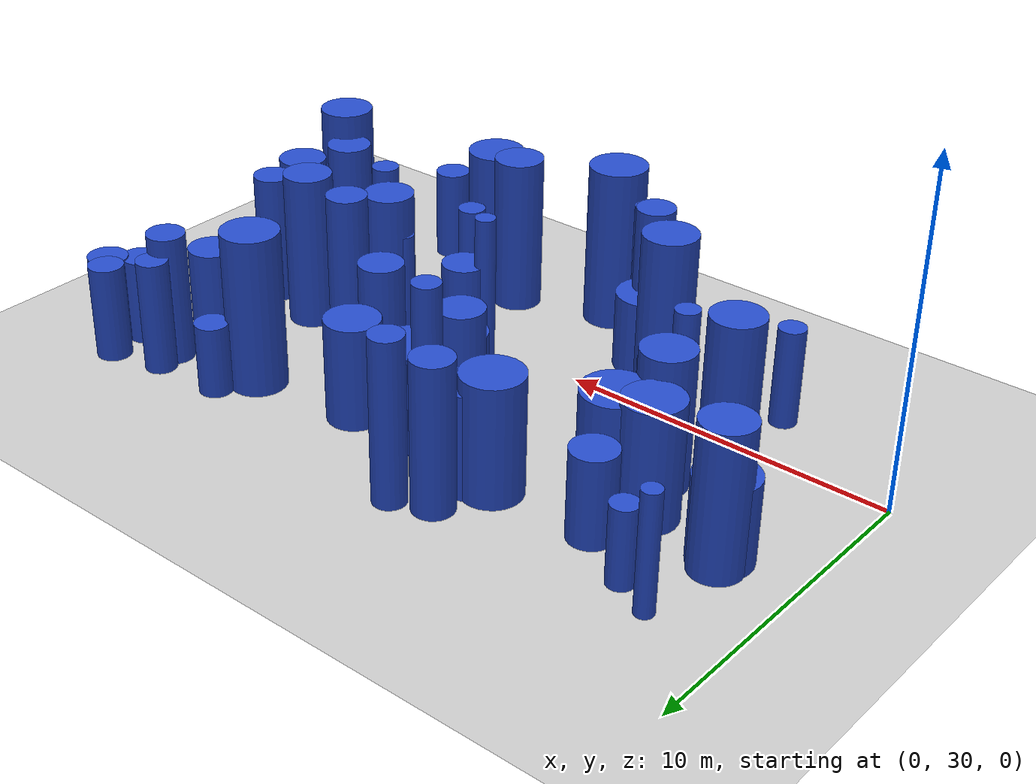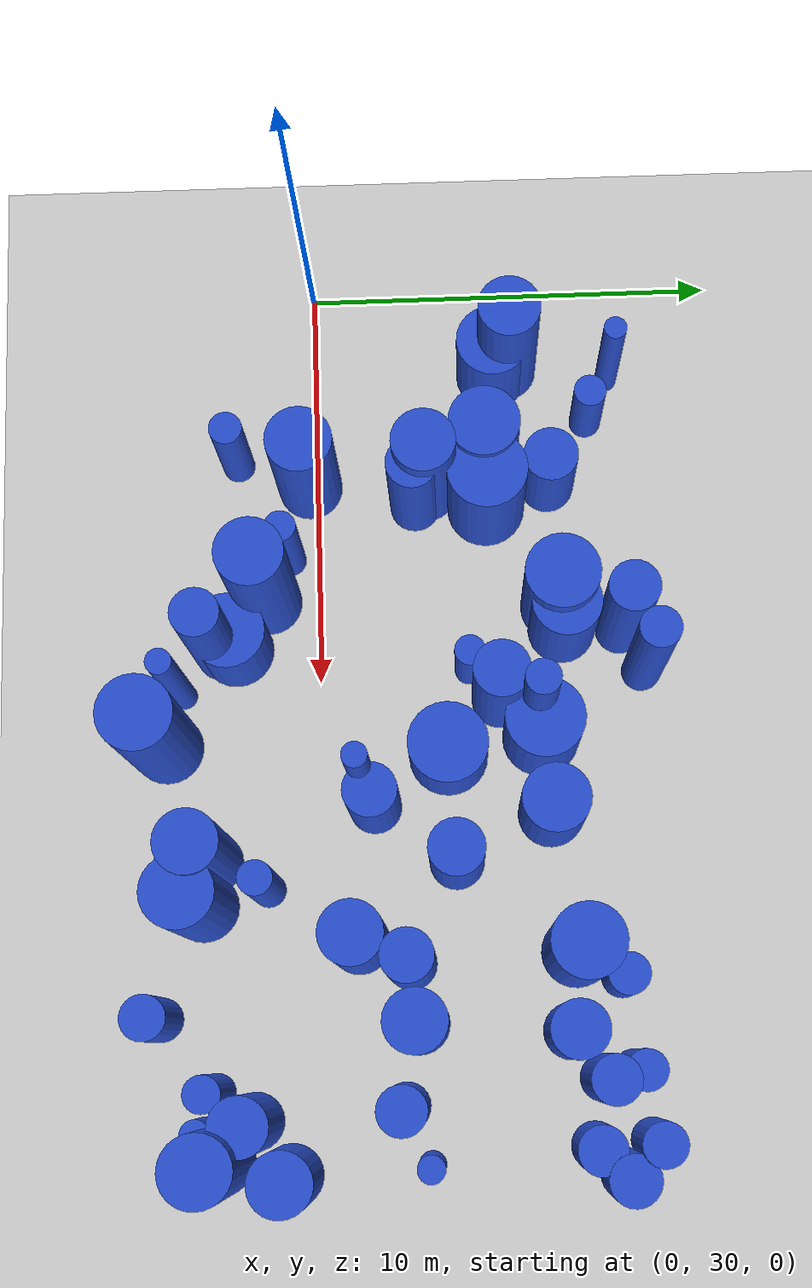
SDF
<sdf version="1.6">
 <world name="default">
  <model name="ground_plane">
   <static>1</static>
   <link name="link">
    <collision name="collision">
     <geometry><plane><normal>0 0 1</normal><size>100 100</size></plane></geometry>
     <surface><friction><ode><mu>100</mu><mu2>50</mu2></ode></friction></surface>
    </collision>
    <visual name="visual">
     <cast_shadows>0</cast_shadows>
     <geometry><plane><normal>0 0 1</normal><size>100 100</size></plane></geometry>
     <material>
      <script><uri>file://media/materials/scripts/gazebo.material</uri><name>Gazebo/Grey</name></script>
     </material>
    </visual>
   </link>
  </model>
  <model name="2">
   <static>0</static>
   <link name="link">
    <inertial>
     <mass>2</mass>
     <inertia><ixx>4.06006</ixx><ixy>0</ixy><ixz>0</ixz><iyy>4.06006</iyy><iyz>0</iyz><izz>0.547674</izz></inertia>
    </inertial>
    <collision name="collision">
     <geometry><cylinder><length>4.76627</length><radius>0.74005</radius></cylinder></geometry>
     <surface><contact><collide_without_contact>1</collide_without_contact></contact></surface>
    </collision>
    <visual name="visual">
     <geometry><cylinder><length>4.76627</length><radius>0.74005</radius></cylinder></geometry>
     <material>
      <script><uri>file://media/materials/scripts/gazebo.material</uri><name>Gazebo/Blue</name></script>
     </material>
    </visual>
    <gravity>0</gravity>
   </link>
   <pose>14.3801 27.3031 2.38314 0 -0 0</pose>
  </model>
  <model name="14">
   <static>0</static>
   <link name="link">
    <inertial>
     <mass>2</mass>
     <inertia><ixx>4.30261</ixx><ixy>0</ixy><ixz>0</ixz><iyy>4.30261</iyy><iyz>0</iyz><izz>0.6461</izz></inertia>
    </inertial>
    <collision name="collision">
     <geometry><cylinder><length>4.88644</length><radius>0.803803</radius></cylinder></geometry>
     <surface><contact><collide_without_contact>1</collide_without_contact></contact></surface>
    </collision>
    <visual name="visual">
     <geometry><cylinder><length>4.88644</length><radius>0.803803</radius></cylinder></geometry>
     <material>
      <script><uri>file://media/materials/scripts/gazebo.material</uri><name>Gazebo/Blue</name></script>
     </material>
    </visual>
    <gravity>0</gravity>
   </link>
   <pose>7.93289 28.7579 2.44322 0 -0 0</pose>
  </model>
  <model name="15">
   <static>0</static>
   <link name="link">
    <inertial>
     <mass>2</mass>
     <inertia><ixx>2.85679</ixx><ixy>0</ixy><ixz>0</ixz><iyy>2.85679</iyy><iyz>0</iyz><izz>0.328589</izz></inertia>
    </inertial>
    <collision name="collision">
     <geometry><cylinder><length>4.01932</length><radius>0.573227</radius></cylinder></geometry>
     <surface><contact><collide_without_contact>1</collide_without_contact></contact></surface>
    </collision>
    <visual name="visual">
     <geometry><cylinder><length>4.01932</length><radius>0.573227</radius></cylinder></geometry>
     <material>
      <script><uri>file://media/materials/scripts/gazebo.material</uri><name>Gazebo/Blue</name></script>
     </material>
    </visual>
    <gravity>0</gravity>
   </link>
   <pose>20.2805 31.834 2.00966 0 -0 0</pose>
  </model>
  <model name="26">
   <static>0</static>
   <link name="link">
    <inertial>
     <mass>2</mass>
     <inertia>
      <ixx>0.763475</ixx>
      <ixy>0</ixy>
      <ixz>0</ixz>
      <iyy>0.763475</iyy>
      <iyz>0</iyz>
      <izz>0.108219</izz>
     </inertia>
    </inertial>
    <collision name="collision">
     <geometry><cylinder><length>2.06305</length><radius>0.328966</radius></cylinder></geometry>
     <surface><contact><collide_without_contact>1</collide_without_contact></contact></surface>
    </collision>
    <visual name="visual">
     <geometry><cylinder><length>2.06305</length><radius>0.328966</radius></cylinder></geometry>
     <material>
      <script><uri>file://media/materials/scripts/gazebo.material</uri><name>Gazebo/Blue</name></script>
     </material>
    </visual>
    <gravity>0</gravity>
   </link>
   <pose>21.6361 32.4049 1.03153 0 -0 0</pose>
  </model>
  <model name="49">
   <static>0</static>
   <link name="link">
    <inertial>
     <mass>2</mass>
     <inertia><ixx>1.58752</ixx><ixy>0</ixy><ixz>0</ixz><iyy>1.58752</iyy><iyz>0</iyz><izz>0.112444</izz></inertia>
    </inertial>
    <collision name="collision">
     <geometry><cylinder><length>3.03114</length><radius>0.335327</radius></cylinder></geometry>
     <surface><contact><collide_without_contact>1</collide_without_contact></contact></surface>
    </collision>
    <visual name="visual">
     <geometry><cylinder><length>3.03114</length><radius>0.335327</radius></cylinder></geometry>
     <material>
      <script><uri>file://media/materials/scripts/gazebo.material</uri><name>Gazebo/Blue</name></script>
     </material>
    </visual>
    <gravity>0</gravity>
   </link>
   <pose>15.9407 30.778 1.51557 0 -0 0</pose>
  </model>
  <model name="52">
   <static>0</static>
   <link name="link">
    <inertial>
     <mass>2</mass>
     <inertia><ixx>4.53354</ixx><ixy>0</ixy><ixz>0</ixz><iyy>4.53354</iyy><iyz>0</iyz><izz>0.761526</izz></inertia>
    </inertial>
    <collision name="collision">
     <geometry><cylinder><length>4.99166</length><radius>0.872654</radius></cylinder></geometry>
     <surface><contact><collide_without_contact>1</collide_without_contact></contact></surface>
    </collision>
    <visual name="visual">
     <geometry><cylinder><length>4.99166</length><radius>0.872654</radius></cylinder></geometry>
     <material>
      <script><uri>file://media/materials/scripts/gazebo.material</uri><name>Gazebo/Blue</name></script>
     </material>
    </visual>
    <gravity>0</gravity>
   </link>
   <pose>11.5308 26.2227 2.49583 0 -0 0</pose>
  </model>
  <model name="75">
   <static>0</static>
   <link name="link">
    <inertial>
     <mass>2</mass>
     <inertia><ixx>1.54398</ixx><ixy>0</ixy><ixz>0</ixz><iyy>1.54398</iyy><iyz>0</iyz><izz>0.272794</izz></inertia>
    </inertial>
    <collision name="collision">
     <geometry><cylinder><length>2.90611</length><radius>0.522297</radius></cylinder></geometry>
     <surface><contact><collide_without_contact>1</collide_without_contact></contact></surface>
    </collision>
    <visual name="visual">
     <geometry><cylinder><length>2.90611</length><radius>0.522297</radius></cylinder></geometry>
     <material>
      <script><uri>file://media/materials/scripts/gazebo.material</uri><name>Gazebo/Blue</name></script>
     </material>
    </visual>
    <gravity>0</gravity>
   </link>
   <pose>21.2322 37.5969 1.45306 0 -0 0</pose>
  </model>
  <model name="76">
   <static>0</static>
   <link name="link">
    <inertial>
     <mass>2</mass>
     <inertia><ixx>3.77454</ixx><ixy>0</ixy><ixz>0</ixz><iyy>3.77454</iyy><iyz>0</iyz><izz>0.6764</izz></inertia>
    </inertial>
    <collision name="collision">
     <geometry><cylinder><length>4.54071</length><radius>0.822435</radius></cylinder></geometry>
     <surface><contact><collide_without_contact>1</collide_without_contact></contact></surface>
    </collision>
    <visual name="visual">
     <geometry><cylinder><length>4.54071</length><radius>0.822435</radius></cylinder></geometry>
     <material>
      <script><uri>file://media/materials/scripts/gazebo.material</uri><name>Gazebo/Blue</name></script>
     </material>
    </visual>
    <gravity>0</gravity>
   </link>
   <pose>21.3706 27.4423 2.27035 0 -0 0</pose>
  </model>
  <model name="93">
   <static>0</static>
   <link name="link">
    <inertial>
     <mass>2</mass>
     <inertia><ixx>3.98973</ixx><ixy>0</ixy><ixz>0</ixz><iyy>3.98973</iyy><iyz>0</iyz><izz>0.325904</izz></inertia>
    </inertial>
    <collision name="collision">
     <geometry><cylinder><length>4.79173</length><radius>0.57088</radius></cylinder></geometry>
     <surface><contact><collide_without_contact>1</collide_without_contact></contact></surface>
    </collision>
    <visual name="visual">
     <geometry><cylinder><length>4.79173</length><radius>0.57088</radius></cylinder></geometry>
     <material>
      <script><uri>file://media/materials/scripts/gazebo.material</uri><name>Gazebo/Blue</name></script>
     </material>
    </visual>
    <gravity>0</gravity>
   </link>
   <pose>9.27206 27.527 2.39586 0 -0 0</pose>
  </model>
  <model name="97">
   <static>0</static>
   <link name="link">
    <inertial>
     <mass>2</mass>
     <inertia><ixx>1.30672</ixx><ixy>0</ixy><ixz>0</ixz><iyy>1.30672</iyy><iyz>0</iyz><izz>0.329685</izz></inertia>
    </inertial>
    <collision name="collision">
     <geometry><cylinder><length>2.61749</length><radius>0.574182</radius></cylinder></geometry>
     <surface><contact><collide_without_contact>1</collide_without_contact></contact></surface>
    </collision>
    <visual name="visual">
     <geometry><cylinder><length>2.61749</length><radius>0.574182</radius></cylinder></geometry>
     <material>
      <script><uri>file://media/materials/scripts/gazebo.material</uri><name>Gazebo/Blue</name></script>
     </material>
    </visual>
    <gravity>0</gravity>
   </link>
   <pose>21.3281 36.24 1.30875 0 -0 0</pose>
  </model>
  <model name="110">
   <static>0</static>
   <link name="link">
    <inertial>
     <mass>2</mass>
     <inertia><ixx>2.35146</ixx><ixy>0</ixy><ixz>0</ixz><iyy>2.35146</iyy><iyz>0</iyz><izz>0.929978</izz></inertia>
    </inertial>
    <collision name="collision">
     <geometry><cylinder><length>3.36435</length><radius>0.964354</radius></cylinder></geometry>
     <surface><contact><collide_without_contact>1</collide_without_contact></contact></surface>
    </collision>
    <visual name="visual">
     <geometry><cylinder><length>3.36435</length><radius>0.964354</radius></cylinder></geometry>
     <material>
      <script><uri>file://media/materials/scripts/gazebo.material</uri><name>Gazebo/Blue</name></script>
     </material>
    </visual>
    <gravity>0</gravity>
   </link>
   <pose>5.66572 34.2087 1.68218 0 -0 0</pose>
  </model>
  <model name="111">
   <static>0</static>
   <link name="link">
    <inertial>
     <mass>2</mass>
     <inertia><ixx>3.46333</ixx><ixy>0</ixy><ixz>0</ixz><iyy>3.46333</iyy><iyz>0</iyz><izz>0.374993</izz></inertia>
    </inertial>
    <collision name="collision">
     <geometry><cylinder><length>4.43339</length><radius>0.612366</radius></cylinder></geometry>
     <surface><contact><collide_without_contact>1</collide_without_contact></contact></surface>
    </collision>
    <visual name="visual">
     <geometry><cylinder><length>4.43339</length><radius>0.612366</radius></cylinder></geometry>
     <material>
      <script><uri>file://media/materials/scripts/gazebo.material</uri><name>Gazebo/Blue</name></script>
     </material>
    </visual>
    <gravity>0</gravity>
   </link>
   <pose>16.9683 32.0406 2.2167 0 -0 0</pose>
  </model>
  <model name="116">
   <static>0</static>
   <link name="link">
    <inertial>
     <mass>2</mass>
     <inertia><ixx>4.11078</ixx><ixy>0</ixy><ixz>0</ixz><iyy>4.11078</iyy><iyz>0</iyz><izz>0.172543</izz></inertia>
    </inertial>
    <collision name="collision">
     <geometry><cylinder><length>4.91397</length><radius>0.415383</radius></cylinder></geometry>
     <surface><contact><collide_without_contact>1</collide_without_contact></contact></surface>
    </collision>
    <visual name="visual">
     <geometry><cylinder><length>4.91397</length><radius>0.415383</radius></cylinder></geometry>
     <material>
      <script><uri>file://media/materials/scripts/gazebo.material</uri><name>Gazebo/Blue</name></script>
     </material>
    </visual>
    <gravity>0</gravity>
   </link>
   <pose>11.0166 35.2485 2.45698 0 -0 0</pose>
  </model>
  <model name="119">
   <static>0</static>
   <link name="link">
    <inertial>
     <mass>2</mass>
     <inertia><ixx>2.4098</ixx><ixy>0</ixy><ixz>0</ixz><iyy>2.4098</iyy><iyz>0</iyz><izz>0.459918</izz></inertia>
    </inertial>
    <collision name="collision">
     <geometry><cylinder><length>3.61649</length><radius>0.678173</radius></cylinder></geometry>
     <surface><contact><collide_without_contact>1</collide_without_contact></contact></surface>
    </collision>
    <visual name="visual">
     <geometry><cylinder><length>3.61649</length><radius>0.678173</radius></cylinder></geometry>
     <material>
      <script><uri>file://media/materials/scripts/gazebo.material</uri><name>Gazebo/Blue</name></script>
     </material>
    </visual>
    <gravity>0</gravity>
   </link>
   <pose>18.6615 35.7969 1.80825 0 -0 0</pose>
  </model>
  <model name="131">
   <static>0</static>
   <link name="link">
    <inertial>
     <mass>2</mass>
     <inertia><ixx>1.52899</ixx><ixy>0</ixy><ixz>0</ixz><iyy>1.52899</iyy><iyz>0</iyz><izz>0.188706</izz></inertia>
    </inertial>
    <collision name="collision">
     <geometry><cylinder><length>2.9339</length><radius>0.434403</radius></cylinder></geometry>
     <surface><contact><collide_without_contact>1</collide_without_contact></contact></surface>
    </collision>
    <visual name="visual">
     <geometry><cylinder><length>2.9339</length><radius>0.434403</radius></cylinder></geometry>
     <material>
      <script><uri>file://media/materials/scripts/gazebo.material</uri><name>Gazebo/Blue</name></script>
     </material>
    </visual>
    <gravity>0</gravity>
   </link>
   <pose>19.8014 27.3711 1.46695 0 -0 0</pose>
  </model>
  <model name="135">
   <static>0</static>
   <link name="link">
    <inertial>
     <mass>2</mass>
     <inertia><ixx>2.03363</ixx><ixy>0</ixy><ixz>0</ixz><iyy>2.03363</iyy><iyz>0</iyz><izz>0.561482</izz></inertia>
    </inertial>
    <collision name="collision">
     <geometry><cylinder><length>3.24305</length><radius>0.749321</radius></cylinder></geometry>
     <surface><contact><collide_without_contact>1</collide_without_contact></contact></surface>
    </collision>
    <visual name="visual">
     <geometry><cylinder><length>3.24305</length><radius>0.749321</radius></cylinder></geometry>
     <material>
      <script><uri>file://media/materials/scripts/gazebo.material</uri><name>Gazebo/Blue</name></script>
     </material>
    </visual>
    <gravity>0</gravity>
   </link>
   <pose>21.7817 29.1035 1.62152 0 -0 0</pose>
  </model>
  <model name="153">
   <static>0</static>
   <link name="link">
    <inertial>
     <mass>2</mass>
     <inertia><ixx>3.0701</ixx><ixy>0</ixy><ixz>0</ixz><iyy>3.0701</iyy><iyz>0</iyz><izz>0.587004</izz></inertia>
    </inertial>
    <collision name="collision">
     <geometry><cylinder><length>4.08162</length><radius>0.766162</radius></cylinder></geometry>
     <surface><contact><collide_without_contact>1</collide_without_contact></contact></surface>
    </collision>
    <visual name="visual">
     <geometry><cylinder><length>4.08162</length><radius>0.766162</radius></cylinder></geometry>
     <material>
      <script><uri>file://media/materials/scripts/gazebo.material</uri><name>Gazebo/Blue</name></script>
     </material>
    </visual>
    <gravity>0</gravity>
   </link>
   <pose>5.17678 32.7306 2.04081 0 -0 0</pose>
  </model>
  <model name="157">
   <static>0</static>
   <link name="link">
    <inertial>
     <mass>2</mass>
     <inertia><ixx>1.36858</ixx><ixy>0</ixy><ixz>0</ixz><iyy>1.36858</iyy><iyz>0</iyz><izz>0.433182</izz></inertia>
    </inertial>
    <collision name="collision">
     <geometry><cylinder><length>2.62905</length><radius>0.658166</radius></cylinder></geometry>
     <surface><contact><collide_without_contact>1</collide_without_contact></contact></surface>
    </collision>
    <visual name="visual">
     <geometry><cylinder><length>2.62905</length><radius>0.658166</radius></cylinder></geometry>
     <material>
      <script><uri>file://media/materials/scripts/gazebo.material</uri><name>Gazebo/Blue</name></script>
     </material>
    </visual>
    <gravity>0</gravity>
   </link>
   <pose>5.13829 35.7656 1.31453 0 -0 0</pose>
  </model>
  <model name="161">
   <static>0</static>
   <link name="link">
    <inertial>
     <mass>2</mass>
     <inertia><ixx>2.38004</ixx><ixy>0</ixy><ixz>0</ixz><iyy>2.38004</iyy><iyz>0</iyz><izz>0.388461</izz></inertia>
    </inertial>
    <collision name="collision">
     <geometry><cylinder><length>3.62144</length><radius>0.623266</radius></cylinder></geometry>
     <surface><contact><collide_without_contact>1</collide_without_contact></contact></surface>
    </collision>
    <visual name="visual">
     <geometry><cylinder><length>3.62144</length><radius>0.623266</radius></cylinder></geometry>
     <material>
      <script><uri>file://media/materials/scripts/gazebo.material</uri><name>Gazebo/Blue</name></script>
     </material>
    </visual>
    <gravity>0</gravity>
   </link>
   <pose>5.56471 32.4436 1.81072 0 -0 0</pose>
  </model>
  <model name="168">
   <static>0</static>
   <link name="link">
    <inertial>
     <mass>2</mass>
     <inertia><ixx>2.46395</ixx><ixy>0</ixy><ixz>0</ixz><iyy>2.46395</iyy><iyz>0</iyz><izz>0.736502</izz></inertia>
    </inertial>
    <collision name="collision">
     <geometry><cylinder><length>3.54601</length><radius>0.858197</radius></cylinder></geometry>
     <surface><contact><collide_without_contact>1</collide_without_contact></contact></surface>
    </collision>
    <visual name="visual">
     <geometry><cylinder><length>3.54601</length><radius>0.858197</radius></cylinder></geometry>
     <material>
      <script><uri>file://media/materials/scripts/gazebo.material</uri><name>Gazebo/Blue</name></script>
     </material>
    </visual>
    <gravity>0</gravity>
   </link>
   <pose>4.56759 34.1751 1.773 0 -0 0</pose>
  </model>
  <model name="171">
   <static>0</static>
   <link name="link">
    <inertial>
     <mass>2</mass>
     <inertia>
      <ixx>0.948382</ixx>
      <ixy>0</ixy>
      <ixz>0</ixz>
      <iyy>0.948382</iyy>
      <iyz>0</iyz>
      <izz>0.135504</izz>
     </inertia>
    </inertial>
    <collision name="collision">
     <geometry><cylinder><length>2.29865</length><radius>0.368109</radius></cylinder></geometry>
     <surface><contact><collide_without_contact>1</collide_without_contact></contact></surface>
    </collision>
    <visual name="visual">
     <geometry><cylinder><length>2.29865</length><radius>0.368109</radius></cylinder></geometry>
     <material>
      <script><uri>file://media/materials/scripts/gazebo.material</uri><name>Gazebo/Blue</name></script>
     </material>
    </visual>
    <gravity>0</gravity>
   </link>
   <pose>9.78927 33.6676 1.14932 0 -0 0</pose>
  </model>
  <model name="188">
   <static>0</static>
   <link name="link">
    <inertial>
     <mass>2</mass>
     <inertia><ixx>4.14335</ixx><ixy>0</ixy><ixz>0</ixz><iyy>4.14335</iyy><iyz>0</iyz><izz>0.235126</izz></inertia>
    </inertial>
    <collision name="collision">
     <geometry><cylinder><length>4.91474</length><radius>0.484898</radius></cylinder></geometry>
     <surface><contact><collide_without_contact>1</collide_without_contact></contact></surface>
    </collision>
    <visual name="visual">
     <geometry><cylinder><length>4.91474</length><radius>0.484898</radius></cylinder></geometry>
     <material>
      <script><uri>file://media/materials/scripts/gazebo.material</uri><name>Gazebo/Blue</name></script>
     </material>
    </visual>
    <gravity>0</gravity>
   </link>
   <pose>9.9782 37.8937 2.45737 0 -0 0</pose>
  </model>
  <model name="201">
   <static>0</static>
   <link name="link">
    <inertial>
     <mass>2</mass>
     <inertia><ixx>1.91528</ixx><ixy>0</ixy><ixz>0</ixz><iyy>1.91528</iyy><iyz>0</iyz><izz>0.890445</izz></inertia>
    </inertial>
    <collision name="collision">
     <geometry><cylinder><length>2.9699</length><radius>0.943634</radius></cylinder></geometry>
     <surface><contact><collide_without_contact>1</collide_without_contact></contact></surface>
    </collision>
    <visual name="visual">
     <geometry><cylinder><length>2.9699</length><radius>0.943634</radius></cylinder></geometry>
     <material>
      <script><uri>file://media/materials/scripts/gazebo.material</uri><name>Gazebo/Blue</name></script>
     </material>
    </visual>
    <gravity>0</gravity>
   </link>
   <pose>11.5583 35.3519 1.48495 0 -0 0</pose>
  </model>
  <model name="203">
   <static>0</static>
   <link name="link">
    <inertial>
     <mass>2</mass>
     <inertia><ixx>2.79883</ixx><ixy>0</ixy><ixz>0</ixz><iyy>2.79883</iyy><iyz>0</iyz><izz>0.322684</izz></inertia>
    </inertial>
    <collision name="collision">
     <geometry><cylinder><length>3.97806</length><radius>0.568053</radius></cylinder></geometry>
     <surface><contact><collide_without_contact>1</collide_without_contact></contact></surface>
    </collision>
    <visual name="visual">
     <geometry><cylinder><length>3.97806</length><radius>0.568053</radius></cylinder></geometry>
     <material>
      <script><uri>file://media/materials/scripts/gazebo.material</uri><name>Gazebo/Blue</name></script>
     </material>
    </visual>
    <gravity>0</gravity>
   </link>
   <pose>19.7723 36.5093 1.98903 0 -0 0</pose>
  </model>
  <model name="209">
   <static>0</static>
   <link name="link">
    <inertial>
     <mass>2</mass>
     <inertia>
      <ixx>2.11249</ixx>
      <ixy>0</ixy>
      <ixz>0</ixz>
      <iyy>2.11249</iyy>
      <iyz>0</iyz>
      <izz>0.0757482</izz>
     </inertia>
    </inertial>
    <collision name="collision">
     <geometry><cylinder><length>3.52813</length><radius>0.275224</radius></cylinder></geometry>
     <surface><contact><collide_without_contact>1</collide_without_contact></contact></surface>
    </collision>
    <visual name="visual">
     <geometry><cylinder><length>3.52813</length><radius>0.275224</radius></cylinder></geometry>
     <material>
      <script><uri>file://media/materials/scripts/gazebo.material</uri><name>Gazebo/Blue</name></script>
     </material>
    </visual>
    <gravity>0</gravity>
   </link>
   <pose>2.36819 37.3679 1.76406 0 -0 0</pose>
  </model>
  <model name="215">
   <static>0</static>
   <link name="link">
    <inertial>
     <mass>2</mass>
     <inertia><ixx>3.34473</ixx><ixy>0</ixy><ixz>0</ixz><iyy>3.34473</iyy><iyz>0</iyz><izz>0.555243</izz></inertia>
    </inertial>
    <collision name="collision">
     <geometry><cylinder><length>4.28983</length><radius>0.745147</radius></cylinder></geometry>
     <surface><contact><collide_without_contact>1</collide_without_contact></contact></surface>
    </collision>
    <visual name="visual">
     <geometry><cylinder><length>4.28983</length><radius>0.745147</radius></cylinder></geometry>
     <material>
      <script><uri>file://media/materials/scripts/gazebo.material</uri><name>Gazebo/Blue</name></script>
     </material>
    </visual>
    <gravity>0</gravity>
   </link>
   <pose>2.04847 34.8468 2.14491 0 -0 0</pose>
  </model>
  <model name="217">
   <static>0</static>
   <link name="link">
    <inertial>
     <mass>2</mass>
     <inertia>
      <ixx>0.908112</ixx>
      <ixy>0</ixy>
      <ixz>0</ixz>
      <iyy>0.908112</iyy>
      <iyz>0</iyz>
      <izz>0.248253</izz>
     </inertia>
    </inertial>
    <collision name="collision">
     <geometry><cylinder><length>2.16885</length><radius>0.49825</radius></cylinder></geometry>
     <surface><contact><collide_without_contact>1</collide_without_contact></contact></surface>
    </collision>
    <visual name="visual">
     <geometry><cylinder><length>2.16885</length><radius>0.49825</radius></cylinder></geometry>
     <material>
      <script><uri>file://media/materials/scripts/gazebo.material</uri><name>Gazebo/Blue</name></script>
     </material>
    </visual>
    <gravity>0</gravity>
   </link>
   <pose>17.4313 37.0569 1.08443 0 -0 0</pose>
  </model>
  <model name="226">
   <static>0</static>
   <link name="link">
    <inertial>
     <mass>2</mass>
     <inertia><ixx>2.63112</ixx><ixy>0</ixy><ixz>0</ixz><iyy>2.63112</iyy><iyz>0</iyz><izz>0.472268</izz></inertia>
    </inertial>
    <collision name="collision">
     <geometry><cylinder><length>3.79077</length><radius>0.687218</radius></cylinder></geometry>
     <surface><contact><collide_without_contact>1</collide_without_contact></contact></surface>
    </collision>
    <visual name="visual">
     <geometry><cylinder><length>3.79077</length><radius>0.687218</radius></cylinder></geometry>
     <material>
      <script><uri>file://media/materials/scripts/gazebo.material</uri><name>Gazebo/Blue</name></script>
     </material>
    </visual>
    <gravity>0</gravity>
   </link>
   <pose>20.5146 28.2637 1.89539 0 -0 0</pose>
  </model>
  <model name="247">
   <static>0</static>
   <link name="link">
    <inertial>
     <mass>2</mass>
     <inertia><ixx>2.09768</ixx><ixy>0</ixy><ixz>0</ixz><iyy>2.09768</iyy><iyz>0</iyz><izz>0.222327</izz></inertia>
    </inertial>
    <collision name="collision">
     <geometry><cylinder><length>3.4524</length><radius>0.471516</radius></cylinder></geometry>
     <surface><contact><collide_without_contact>1</collide_without_contact></contact></surface>
    </collision>
    <visual name="visual">
     <geometry><cylinder><length>3.4524</length><radius>0.471516</radius></cylinder></geometry>
     <material>
      <script><uri>file://media/materials/scripts/gazebo.material</uri><name>Gazebo/Blue</name></script>
     </material>
    </visual>
    <gravity>0</gravity>
   </link>
   <pose>19.593 37.2306 1.7262 0 -0 0</pose>
  </model>
  <model name="270">
   <static>0</static>
   <link name="link">
    <inertial>
     <mass>2</mass>
     <inertia><ixx>2.85217</ixx><ixy>0</ixy><ixz>0</ixz><iyy>2.85217</iyy><iyz>0</iyz><izz>0.449757</izz></inertia>
    </inertial>
    <collision name="collision">
     <geometry><cylinder><length>3.97036</length><radius>0.670639</radius></cylinder></geometry>
     <surface><contact><collide_without_contact>1</collide_without_contact></contact></surface>
    </collision>
    <visual name="visual">
     <geometry><cylinder><length>3.97036</length><radius>0.670639</radius></cylinder></geometry>
     <material>
      <script><uri>file://media/materials/scripts/gazebo.material</uri><name>Gazebo/Blue</name></script>
     </material>
    </visual>
    <gravity>0</gravity>
   </link>
   <pose>10.5963 34.3656 1.98518 0 -0 0</pose>
  </model>
  <model name="282">
   <static>0</static>
   <link name="link">
    <inertial>
     <mass>2</mass>
     <inertia><ixx>1.36812</ixx><ixy>0</ixy><ixz>0</ixz><iyy>1.36812</iyy><iyz>0</iyz><izz>0.361367</izz></inertia>
    </inertial>
    <collision name="collision">
     <geometry><cylinder><length>2.66919</length><radius>0.601138</radius></cylinder></geometry>
     <surface><contact><collide_without_contact>1</collide_without_contact></contact></surface>
    </collision>
    <visual name="visual">
     <geometry><cylinder><length>2.66919</length><radius>0.601138</radius></cylinder></geometry>
     <material>
      <script><uri>file://media/materials/scripts/gazebo.material</uri><name>Gazebo/Blue</name></script>
     </material>
    </visual>
    <gravity>0</gravity>
   </link>
   <pose>21.9939 36.9241 1.3346 0 -0 0</pose>
  </model>
  <model name="284">
   <static>0</static>
   <link name="link">
    <inertial>
     <mass>2</mass>
     <inertia>
      <ixx>3.03926</ixx>
      <ixy>0</ixy>
      <ixz>0</ixz>
      <iyy>3.03926</iyy>
      <iyz>0</iyz>
      <izz>0.0947474</izz>
     </inertia>
    </inertial>
    <collision name="collision">
     <geometry><cylinder><length>4.2369</length><radius>0.307811</radius></cylinder></geometry>
     <surface><contact><collide_without_contact>1</collide_without_contact></contact></surface>
    </collision>
    <visual name="visual">
     <geometry><cylinder><length>4.2369</length><radius>0.307811</radius></cylinder></geometry>
     <material>
      <script><uri>file://media/materials/scripts/gazebo.material</uri><name>Gazebo/Blue</name></script>
     </material>
    </visual>
    <gravity>0</gravity>
   </link>
   <pose>10.2465 26.6381 2.11845 0 -0 0</pose>
  </model>
  <model name="292">
   <static>0</static>
   <link name="link">
    <inertial>
     <mass>2</mass>
     <inertia><ixx>2.26628</ixx><ixy>0</ixy><ixz>0</ixz><iyy>2.26628</iyy><iyz>0</iyz><izz>0.443191</izz></inertia>
    </inertial>
    <collision name="collision">
     <geometry><cylinder><length>3.50259</length><radius>0.665726</radius></cylinder></geometry>
     <surface><contact><collide_without_contact>1</collide_without_contact></contact></surface>
    </collision>
    <visual name="visual">
     <geometry><cylinder><length>3.50259</length><radius>0.665726</radius></cylinder></geometry>
     <material>
      <script><uri>file://media/materials/scripts/gazebo.material</uri><name>Gazebo/Blue</name></script>
     </material>
    </visual>
    <gravity>0</gravity>
   </link>
   <pose>14.551 33.2052 1.75129 0 -0 0</pose>
  </model>
  <model name="312">
   <static>0</static>
   <link name="link">
    <inertial>
     <mass>2</mass>
     <inertia><ixx>1.73389</ixx><ixy>0</ixy><ixz>0</ixz><iyy>1.73389</iyy><iyz>0</iyz><izz>0.140642</izz></inertia>
    </inertial>
    <collision name="collision">
     <geometry><cylinder><length>3.15934</length><radius>0.375022</radius></cylinder></geometry>
     <surface><contact><collide_without_contact>1</collide_without_contact></contact></surface>
    </collision>
    <visual name="visual">
     <geometry><cylinder><length>3.15934</length><radius>0.375022</radius></cylinder></geometry>
     <material>
      <script><uri>file://media/materials/scripts/gazebo.material</uri><name>Gazebo/Blue</name></script>
     </material>
    </visual>
    <gravity>0</gravity>
   </link>
   <pose>6.86889 29.3098 1.57967 0 -0 0</pose>
  </model>
  <model name="315">
   <static>0</static>
   <link name="link">
    <inertial>
     <mass>2</mass>
     <inertia><ixx>1.31121</ixx><ixy>0</ixy><ixz>0</ixz><iyy>1.31121</iyy><iyz>0</iyz><izz>0.819519</izz></inertia>
    </inertial>
    <collision name="collision">
     <geometry><cylinder><length>2.32566</length><radius>0.905273</radius></cylinder></geometry>
     <surface><contact><collide_without_contact>1</collide_without_contact></contact></surface>
    </collision>
    <visual name="visual">
     <geometry><cylinder><length>2.32566</length><radius>0.905273</radius></cylinder></geometry>
     <material>
      <script><uri>file://media/materials/scripts/gazebo.material</uri><name>Gazebo/Blue</name></script>
     </material>
    </visual>
    <gravity>0</gravity>
   </link>
   <pose>9.12732 27.9421 1.16283 0 -0 0</pose>
  </model>
  <model name="347">
   <static>0</static>
   <link name="link">
    <inertial>
     <mass>2</mass>
     <inertia><ixx>4.22462</ixx><ixy>0</ixy><ixz>0</ixz><iyy>4.22462</iyy><iyz>0</iyz><izz>0.719649</izz></inertia>
    </inertial>
    <collision name="collision">
     <geometry><cylinder><length>4.81547</length><radius>0.848321</radius></cylinder></geometry>
     <surface><contact><collide_without_contact>1</collide_without_contact></contact></surface>
    </collision>
    <visual name="visual">
     <geometry><cylinder><length>4.81547</length><radius>0.848321</radius></cylinder></geometry>
     <material>
      <script><uri>file://media/materials/scripts/gazebo.material</uri><name>Gazebo/Blue</name></script>
     </material>
    </visual>
    <gravity>0</gravity>
   </link>
   <pose>16.8044 35.9956 2.40774 0 -0 0</pose>
  </model>
  <model name="349">
   <static>0</static>
   <link name="link">
    <inertial>
     <mass>2</mass>
     <inertia><ixx>1.44795</ixx><ixy>0</ixy><ixz>0</ixz><iyy>1.44795</iyy><iyz>0</iyz><izz>0.777869</izz></inertia>
    </inertial>
    <collision name="collision">
     <geometry><cylinder><length>2.52073</length><radius>0.881969</radius></cylinder></geometry>
     <surface><contact><collide_without_contact>1</collide_without_contact></contact></surface>
    </collision>
    <visual name="visual">
     <geometry><cylinder><length>2.52073</length><radius>0.881969</radius></cylinder></geometry>
     <material>
      <script><uri>file://media/materials/scripts/gazebo.material</uri><name>Gazebo/Blue</name></script>
     </material>
    </visual>
    <gravity>0</gravity>
   </link>
   <pose>2.16951 34.4719 1.26037 0 -0 0</pose>
  </model>
  <model name="360">
   <static>0</static>
   <link name="link">
    <inertial>
     <mass>2</mass>
     <inertia><ixx>1.28272</ixx><ixy>0</ixy><ixz>0</ixz><iyy>1.28272</iyy><iyz>0</iyz><izz>0.926603</izz></inertia>
    </inertial>
    <collision name="collision">
     <geometry><cylinder><length>2.21731</length><radius>0.962602</radius></cylinder></geometry>
     <surface><contact><collide_without_contact>1</collide_without_contact></contact></surface>
    </collision>
    <visual name="visual">
     <geometry><cylinder><length>2.21731</length><radius>0.962602</radius></cylinder></geometry>
     <material>
      <script><uri>file://media/materials/scripts/gazebo.material</uri><name>Gazebo/Blue</name></script>
     </material>
    </visual>
    <gravity>0</gravity>
   </link>
   <pose>11.9483 33.0791 1.10866 0 -0 0</pose>
  </model>
  <model name="362">
   <static>0</static>
   <link name="link">
    <inertial>
     <mass>2</mass>
     <inertia>
      <ixx>0.743693</ixx>
      <ixy>0</ixy>
      <ixz>0</ixz>
      <iyy>0.743693</iyy>
      <iyz>0</iyz>
      <izz>0.125783</izz>
     </inertia>
    </inertial>
    <collision name="collision">
     <geometry><cylinder><length>2.02109</length><radius>0.354659</radius></cylinder></geometry>
     <surface><contact><collide_without_contact>1</collide_without_contact></contact></surface>
    </collision>
    <visual name="visual">
     <geometry><cylinder><length>2.02109</length><radius>0.354659</radius></cylinder></geometry>
     <material>
      <script><uri>file://media/materials/scripts/gazebo.material</uri><name>Gazebo/Blue</name></script>
     </material>
    </visual>
    <gravity>0</gravity>
   </link>
   <pose>20.7104 27.0873 1.01055 0 -0 0</pose>
  </model>
  <model name="367">
   <static>0</static>
   <link name="link">
    <inertial>
     <mass>2</mass>
     <inertia><ixx>1.47724</ixx><ixy>0</ixy><ixz>0</ixz><iyy>1.47724</iyy><iyz>0</iyz><izz>0.281817</izz></inertia>
    </inertial>
    <collision name="collision">
     <geometry><cylinder><length>2.83161</length><radius>0.530864</radius></cylinder></geometry>
     <surface><contact><collide_without_contact>1</collide_without_contact></contact></surface>
    </collision>
    <visual name="visual">
     <geometry><cylinder><length>2.83161</length><radius>0.530864</radius></cylinder></geometry>
     <material>
      <script><uri>file://media/materials/scripts/gazebo.material</uri><name>Gazebo/Blue</name></script>
     </material>
    </visual>
    <gravity>0</gravity>
   </link>
   <pose>18.0834 26.0452 1.4158 0 -0 0</pose>
  </model>
  <model name="368">
   <static>0</static>
   <link name="link">
    <inertial>
     <mass>2</mass>
     <inertia><ixx>1.55349</ixx><ixy>0</ixy><ixz>0</ixz><iyy>1.55349</iyy><iyz>0</iyz><izz>0.159014</izz></inertia>
    </inertial>
    <collision name="collision">
     <geometry><cylinder><length>2.97386</length><radius>0.398766</radius></cylinder></geometry>
     <surface><contact><collide_without_contact>1</collide_without_contact></contact></surface>
    </collision>
    <visual name="visual">
     <geometry><cylinder><length>2.97386</length><radius>0.398766</radius></cylinder></geometry>
     <material>
      <script><uri>file://media/materials/scripts/gazebo.material</uri><name>Gazebo/Blue</name></script>
     </material>
    </visual>
    <gravity>0</gravity>
   </link>
   <pose>4.35867 28.0318 1.48693 0 -0 0</pose>
  </model>
  <model name="380">
   <static>0</static>
   <link name="link">
    <inertial>
     <mass>2</mass>
     <inertia><ixx>4.04128</ixx><ixy>0</ixy><ixz>0</ixz><iyy>4.04128</iyy><iyz>0</iyz><izz>0.527316</izz></inertia>
    </inertial>
    <collision name="collision">
     <geometry><cylinder><length>4.76086</length><radius>0.726166</radius></cylinder></geometry>
     <surface><contact><collide_without_contact>1</collide_without_contact></contact></surface>
    </collision>
    <visual name="visual">
     <geometry><cylinder><length>4.76086</length><radius>0.726166</radius></cylinder></geometry>
     <material>
      <script><uri>file://media/materials/scripts/gazebo.material</uri><name>Gazebo/Blue</name></script>
     </material>
    </visual>
    <gravity>0</gravity>
   </link>
   <pose>18.3843 32.1917 2.38043 0 -0 0</pose>
  </model>
  <model name="387">
   <static>0</static>
   <link name="link">
    <inertial>
     <mass>2</mass>
     <inertia>
      <ixx>0.986289</ixx>
      <ixy>0</ixy>
      <ixz>0</ixz>
      <iyy>0.986289</iyy>
      <iyz>0</iyz>
      <izz>0.155188</izz>
     </inertia>
    </inertial>
    <collision name="collision">
     <geometry><cylinder><length>2.33499</length><radius>0.393939</radius></cylinder></geometry>
     <surface><contact><collide_without_contact>1</collide_without_contact></contact></surface>
    </collision>
    <visual name="visual">
     <geometry><cylinder><length>2.33499</length><radius>0.393939</radius></cylinder></geometry>
     <material>
      <script><uri>file://media/materials/scripts/gazebo.material</uri><name>Gazebo/Blue</name></script>
     </material>
    </visual>
    <gravity>0</gravity>
   </link>
   <pose>3.4696 36.7967 1.16749 0 -0 0</pose>
  </model>
  <model name="410">
   <static>0</static>
   <link name="link">
    <inertial>
     <mass>2</mass>
     <inertia><ixx>3.50799</ixx><ixy>0</ixy><ixz>0</ixz><iyy>3.50799</iyy><iyz>0</iyz><izz>0.362625</izz></inertia>
    </inertial>
    <collision name="collision">
     <geometry><cylinder><length>4.46767</length><radius>0.602184</radius></cylinder></geometry>
     <surface><contact><collide_without_contact>1</collide_without_contact></contact></surface>
    </collision>
    <visual name="visual">
     <geometry><cylinder><length>4.46767</length><radius>0.602184</radius></cylinder></geometry>
     <material>
      <script><uri>file://media/materials/scripts/gazebo.material</uri><name>Gazebo/Blue</name></script>
     </material>
    </visual>
    <gravity>0</gravity>
   </link>
   <pose>8.90326 37.4141 2.23383 0 -0 0</pose>
  </model>
  <model name="423">
   <static>0</static>
   <link name="link">
    <inertial>
     <mass>2</mass>
     <inertia><ixx>2.53609</ixx><ixy>0</ixy><ixz>0</ixz><iyy>2.53609</iyy><iyz>0</iyz><izz>0.793431</izz></inertia>
    </inertial>
    <collision name="collision">
     <geometry><cylinder><length>3.58277</length><radius>0.890748</radius></cylinder></geometry>
     <surface><contact><collide_without_contact>1</collide_without_contact></contact></surface>
    </collision>
    <visual name="visual">
     <geometry><cylinder><length>3.58277</length><radius>0.890748</radius></cylinder></geometry>
     <material>
      <script><uri>file://media/materials/scripts/gazebo.material</uri><name>Gazebo/Blue</name></script>
     </material>
    </visual>
    <gravity>0</gravity>
   </link>
   <pose>8.26337 35.8709 1.79138 0 -0 0</pose>
  </model>
  <model name="455">
   <static>0</static>
   <link name="link">
    <inertial>
     <mass>2</mass>
     <inertia><ixx>1.95808</ixx><ixy>0</ixy><ixz>0</ixz><iyy>1.95808</iyy><iyz>0</iyz><izz>0.68615</izz></inertia>
    </inertial>
    <collision name="collision">
     <geometry><cylinder><length>3.11288</length><radius>0.828341</radius></cylinder></geometry>
     <surface><contact><collide_without_contact>1</collide_without_contact></contact></surface>
    </collision>
    <visual name="visual">
     <geometry><cylinder><length>3.11288</length><radius>0.828341</radius></cylinder></geometry>
     <material>
      <script><uri>file://media/materials/scripts/gazebo.material</uri><name>Gazebo/Blue</name></script>
     </material>
    </visual>
    <gravity>0</gravity>
   </link>
   <pose>8.86484 35.9674 1.55644 0 -0 0</pose>
  </model>
  <model name="458">
   <static>0</static>
   <link name="link">
    <inertial>
     <mass>2</mass>
     <inertia><ixx>2.82308</ixx><ixy>0</ixy><ixz>0</ixz><iyy>2.82308</iyy><iyz>0</iyz><izz>0.631028</izz></inertia>
    </inertial>
    <collision name="collision">
     <geometry><cylinder><length>3.87884</length><radius>0.794373</radius></cylinder></geometry>
     <surface><contact><collide_without_contact>1</collide_without_contact></contact></surface>
    </collision>
    <visual name="visual">
     <geometry><cylinder><length>3.87884</length><radius>0.794373</radius></cylinder></geometry>
     <material>
      <script><uri>file://media/materials/scripts/gazebo.material</uri><name>Gazebo/Blue</name></script>
     </material>
    </visual>
    <gravity>0</gravity>
   </link>
   <pose>4.9921 29.8294 1.93942 0 -0 0</pose>
  </model>
  <model name="459">
   <static>0</static>
   <link name="link">
    <inertial>
     <mass>2</mass>
     <inertia><ixx>1.33661</ixx><ixy>0</ixy><ixz>0</ixz><iyy>1.33661</iyy><iyz>0</iyz><izz>0.176571</izz></inertia>
    </inertial>
    <collision name="collision">
     <geometry><cylinder><length>2.73677</length><radius>0.420204</radius></cylinder></geometry>
     <surface><contact><collide_without_contact>1</collide_without_contact></contact></surface>
    </collision>
    <visual name="visual">
     <geometry><cylinder><length>2.73677</length><radius>0.420204</radius></cylinder></geometry>
     <material>
      <script><uri>file://media/materials/scripts/gazebo.material</uri><name>Gazebo/Blue</name></script>
     </material>
    </visual>
    <gravity>0</gravity>
   </link>
   <pose>4.8506 30.157 1.36839 0 -0 0</pose>
  </model>
  <model name="463">
   <static>0</static>
   <link name="link">
    <inertial>
     <mass>2</mass>
     <inertia><ixx>1.99573</ixx><ixy>0</ixy><ixz>0</ixz><iyy>1.99573</iyy><iyz>0</iyz><izz>0.167472</izz></inertia>
    </inertial>
    <collision name="collision">
     <geometry><cylinder><length>3.38703</length><radius>0.409234</radius></cylinder></geometry>
     <surface><contact><collide_without_contact>1</collide_without_contact></contact></surface>
    </collision>
    <visual name="visual">
     <geometry><cylinder><length>3.38703</length><radius>0.409234</radius></cylinder></geometry>
     <material>
      <script><uri>file://media/materials/scripts/gazebo.material</uri><name>Gazebo/Blue</name></script>
     </material>
    </visual>
    <gravity>0</gravity>
   </link>
   <pose>15.0867 28.6542 1.69351 0 -0 0</pose>
  </model>
  <model name="467">
   <static>0</static>
   <link name="link">
    <inertial>
     <mass>2</mass>
     <inertia><ixx>1.93327</ixx><ixy>0</ixy><ixz>0</ixz><iyy>1.93327</iyy><iyz>0</iyz><izz>0.412017</izz></inertia>
    </inertial>
    <collision name="collision">
     <geometry><cylinder><length>3.21925</length><radius>0.641886</radius></cylinder></geometry>
     <surface><contact><collide_without_contact>1</collide_without_contact></contact></surface>
    </collision>
    <visual name="visual">
     <geometry><cylinder><length>3.21925</length><radius>0.641886</radius></cylinder></geometry>
     <material>
      <script><uri>file://media/materials/scripts/gazebo.material</uri><name>Gazebo/Blue</name></script>
     </material>
    </visual>
    <gravity>0</gravity>
   </link>
   <pose>13.1514 31.2642 1.60962 0 -0 0</pose>
  </model>
  <model name="473">
   <static>0</static>
   <link name="link">
    <inertial>
     <mass>2</mass>
     <inertia><ixx>3.7343</ixx><ixy>0</ixy><ixz>0</ixz><iyy>3.7343</iyy><iyz>0</iyz><izz>0.0907218</izz></inertia>
    </inertial>
    <collision name="collision">
     <geometry><cylinder><length>4.70464</length><radius>0.301201</radius></cylinder></geometry>
     <surface><contact><collide_without_contact>1</collide_without_contact></contact></surface>
    </collision>
    <visual name="visual">
     <geometry><cylinder><length>4.70464</length><radius>0.301201</radius></cylinder></geometry>
     <material>
      <script><uri>file://media/materials/scripts/gazebo.material</uri><name>Gazebo/Blue</name></script>
     </material>
    </visual>
    <gravity>0</gravity>
   </link>
   <pose>12.5876 31.015 2.35232 0 -0 0</pose>
  </model>
  <model name="478">
   <static>0</static>
   <link name="link">
    <inertial>
     <mass>2</mass>
     <inertia><ixx>3.94903</ixx><ixy>0</ixy><ixz>0</ixz><iyy>3.94903</iyy><iyz>0</iyz><izz>0.703714</izz></inertia>
    </inertial>
    <collision name="collision">
     <geometry><cylinder><length>4.64575</length><radius>0.838877</radius></cylinder></geometry>
     <surface><contact><collide_without_contact>1</collide_without_contact></contact></surface>
    </collision>
    <visual name="visual">
     <geometry><cylinder><length>4.64575</length><radius>0.838877</radius></cylinder></geometry>
     <material>
      <script><uri>file://media/materials/scripts/gazebo.material</uri><name>Gazebo/Blue</name></script>
     </material>
    </visual>
    <gravity>0</gravity>
   </link>
   <pose>15.4444 27.089 2.32288 0 -0 0</pose>
  </model>
  <model name="479">
   <static>0</static>
   <link name="link">
    <inertial>
     <mass>2</mass>
     <inertia><ixx>3.27592</ixx><ixy>0</ixy><ixz>0</ixz><iyy>3.27592</iyy><iyz>0</iyz><izz>0.553561</izz></inertia>
    </inertial>
    <collision name="collision">
     <geometry><cylinder><length>4.24203</length><radius>0.744017</radius></cylinder></geometry>
     <surface><contact><collide_without_contact>1</collide_without_contact></contact></surface>
    </collision>
    <visual name="visual">
     <geometry><cylinder><length>4.24203</length><radius>0.744017</radius></cylinder></geometry>
     <material>
      <script><uri>file://media/materials/scripts/gazebo.material</uri><name>Gazebo/Blue</name></script>
     </material>
    </visual>
    <gravity>0</gravity>
   </link>
   <pose>16.4285 30.8177 2.12102 0 -0 0</pose>
  </model>
  <model name="485">
   <static>0</static>
   <link name="link">
    <inertial>
     <mass>2</mass>
     <inertia><ixx>1.92872</ixx><ixy>0</ixy><ixz>0</ixz><iyy>1.92872</iyy><iyz>0</iyz><izz>0.651696</izz></inertia>
    </inertial>
    <collision name="collision">
     <geometry><cylinder><length>3.10117</length><radius>0.807277</radius></cylinder></geometry>
     <surface><contact><collide_without_contact>1</collide_without_contact></contact></surface>
    </collision>
    <visual name="visual">
     <geometry><cylinder><length>3.10117</length><radius>0.807277</radius></cylinder></geometry>
     <material>
      <script><uri>file://media/materials/scripts/gazebo.material</uri><name>Gazebo/Blue</name></script>
     </material>
    </visual>
    <gravity>0</gravity>
   </link>
   <pose>13.4528 35.5247 1.55058 0 -0 0</pose>
  </model>
  <model name="486">
   <static>0</static>
   <link name="link">
    <inertial>
     <mass>2</mass>
     <inertia><ixx>2.24539</ixx><ixy>0</ixy><ixz>0</ixz><iyy>2.24539</iyy><iyz>0</iyz><izz>0.207624</izz></inertia>
    </inertial>
    <collision name="collision">
     <geometry><cylinder><length>3.58461</length><radius>0.455658</radius></cylinder></geometry>
     <surface><contact><collide_without_contact>1</collide_without_contact></contact></surface>
    </collision>
    <visual name="visual">
     <geometry><cylinder><length>3.58461</length><radius>0.455658</radius></cylinder></geometry>
     <material>
      <script><uri>file://media/materials/scripts/gazebo.material</uri><name>Gazebo/Blue</name></script>
     </material>
    </visual>
    <gravity>0</gravity>
   </link>
   <pose>14.6752 26.8972 1.79231 0 -0 0</pose>
  </model>
 </world>
</sdf>
